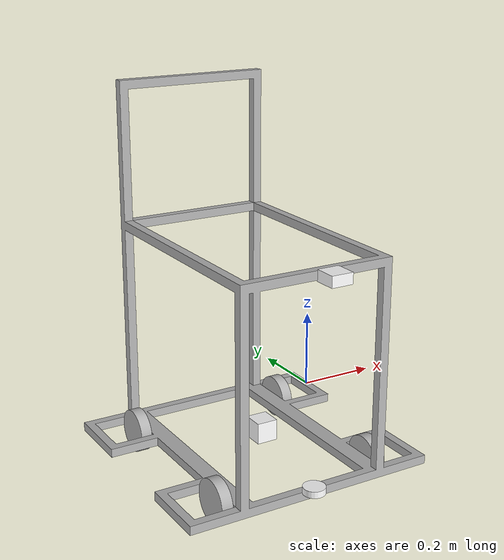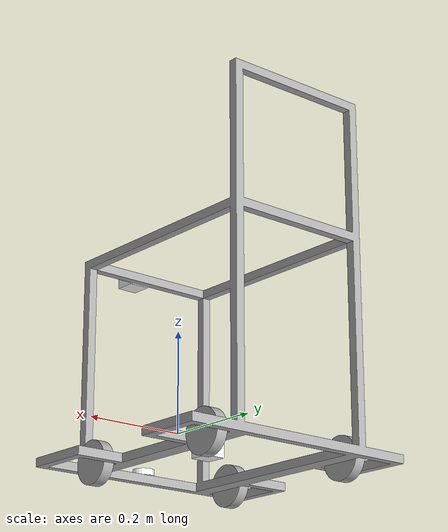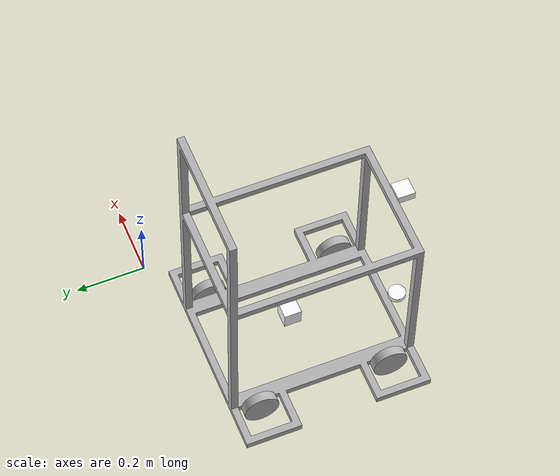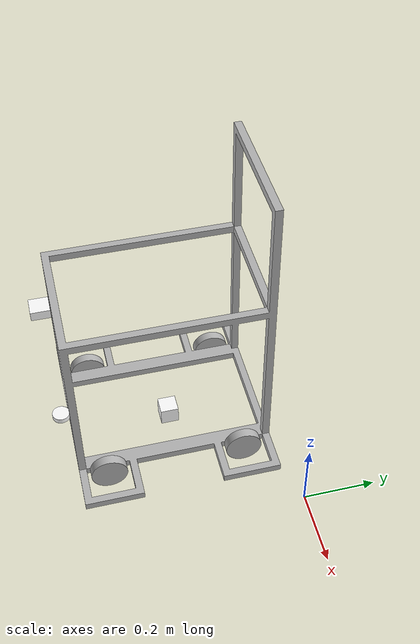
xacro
<?xml version="1.0" ?>
<robot name="urdf_base" xmlns:xacro="http://www.ros.org/wiki/xacro">

<xacro:include filename="$(find urdf_base_description)/urdf/materials.xacro" />
<xacro:include filename="$(find urdf_base_description)/urdf/urdf_base.trans" />
<xacro:include filename="$(find urdf_base_description)/urdf/urdf_base.gazebo" />
<link name="base_footprint">

</link>
<link name="base_link">
  <inertial>
    <origin xyz="-0.3694098126634616 -0.30118096192413374 0.19692457662762536" rpy="0 0 0"/>
    <mass value="19.185824620104434"/>
    <inertia ixx="1.844906" iyy="1.663084" izz="1.439572" ixy="0.0" iyz="-0.192956" ixz="0.0"/>
  </inertial>
  <visual>
    <origin xyz="0 0 0" rpy="0 0 0"/>
    <geometry>
      <mesh filename="file://$(find urdf_base_description)/meshes/base_link.stl" scale="0.001 0.001 0.001"/>
    </geometry>
    <material name="silver"/>
  </visual>
  <collision>
    <origin xyz="0 0 0" rpy="0 0 0"/>
    <geometry>
      <mesh filename="file://$(find urdf_base_description)/meshes/base_link.stl" scale="0.001 0.001 0.001"/>
    </geometry>
  </collision>
</link>

<joint name="footprint_link_joint" type="fixed">
  <origin xyz="0 0 0" rpy="0 0 0"/>
  <parent link="base_footprint"/>
  <child link="base_link"/>
  <axis xyz="0 0 0"/>
</joint>

<link name="wheel_1_1">
  <inertial>
    <origin xyz="0.013000187336528163 3.3163871071550943e-07 4.379836845702645e-07" rpy="0 0 0"/>
    <mass value="1.6029976514941926"/>
    <inertia ixx="0.002004" iyy="0.001092" izz="0.001092" ixy="0.0" iyz="-0.0" ixz="0.0"/>
  </inertial>
  <visual>
    <origin xyz="0.18941 0.509146 -0.056794" rpy="0 0 0"/>
    <geometry>
      <mesh filename="file://$(find urdf_base_description)/meshes/wheel_1_1.stl" scale="0.001 0.001 0.001"/>
    </geometry>
    <material name="silver"/>
  </visual>
  <collision>
    <origin xyz="0.18941 0.509146 -0.056794" rpy="0 0 0"/>
    <geometry>
      <mesh filename="file://$(find urdf_base_description)/meshes/wheel_1_1.stl" scale="0.001 0.001 0.001"/>
    </geometry>
  </collision>
</link>

<link name="wheel_2_1">
  <inertial>
    <origin xyz="0.013000187336532881 3.3163871146491e-07 4.379836929663261e-07" rpy="0 0 0"/>
    <mass value="1.6029976514941917"/>
    <inertia ixx="0.002004" iyy="0.001092" izz="0.001092" ixy="-0.0" iyz="-0.0" ixz="-0.0"/>
  </inertial>
  <visual>
    <origin xyz="0.18941 0.129146 -0.056794" rpy="0 0 0"/>
    <geometry>
      <mesh filename="file://$(find urdf_base_description)/meshes/wheel_2_1.stl" scale="0.001 0.001 0.001"/>
    </geometry>
    <material name="silver"/>
  </visual>
  <collision>
    <origin xyz="0.18941 0.129146 -0.056794" rpy="0 0 0"/>
    <geometry>
      <mesh filename="file://$(find urdf_base_description)/meshes/wheel_2_1.stl" scale="0.001 0.001 0.001"/>
    </geometry>
  </collision>
</link>

<link name="wheel_4_1">
  <inertial>
    <origin xyz="-0.012999812663476495 3.316387161000911e-07 4.379836937781767e-07" rpy="0 0 0"/>
    <mass value="1.6029976514941915"/>
    <inertia ixx="0.002004" iyy="0.001092" izz="0.001092" ixy="0.0" iyz="-0.0" ixz="0.0"/>
  </inertial>
  <visual>
    <origin xyz="0.54941 0.129146 -0.056794" rpy="0 0 0"/>
    <geometry>
      <mesh filename="file://$(find urdf_base_description)/meshes/wheel_4_1.stl" scale="0.001 0.001 0.001"/>
    </geometry>
    <material name="silver"/>
  </visual>
  <collision>
    <origin xyz="0.54941 0.129146 -0.056794" rpy="0 0 0"/>
    <geometry>
      <mesh filename="file://$(find urdf_base_description)/meshes/wheel_4_1.stl" scale="0.001 0.001 0.001"/>
    </geometry>
  </collision>
</link>

<link name="wheel_3_1">
  <inertial>
    <origin xyz="-0.012999812663473054 3.316387148233346e-07 4.379836854931374e-07" rpy="0 0 0"/>
    <mass value="1.6029976514941926"/>
    <inertia ixx="0.002004" iyy="0.001092" izz="0.001092" ixy="0.0" iyz="0.0" ixz="0.0"/>
  </inertial>
  <visual>
    <origin xyz="0.54941 0.509146 -0.056794" rpy="0 0 0"/>
    <geometry>
      <mesh filename="file://$(find urdf_base_description)/meshes/wheel_3_1.stl" scale="0.001 0.001 0.001"/>
    </geometry>
    <material name="silver"/>
  </visual>
  <collision>
    <origin xyz="0.54941 0.509146 -0.056794" rpy="0 0 0"/>
    <geometry>
      <mesh filename="file://$(find urdf_base_description)/meshes/wheel_3_1.stl" scale="0.001 0.001 0.001"/>
    </geometry>
  </collision>
</link>

<link name="camera">
    <inertial>
            <mass value="0.1" />
            <inertia ixx="0.01" ixy="0.0" ixz="0"
            iyy="0.01" iyz="0" izz="0.01" />
    </inertial>

    <visual>
      <geometry>
        <box size="0.05 0.05 0.025"/>
      </geometry>
      <material name="white">
        <color rgba="1 1 1 1"/>
      </material>
    </visual>

    <collision>
      <geometry>
          <box size="0.05 0.05 0.025"/>
      </geometry>
    </collision>
</link>

<link name="lidar">
    <inertial>
            <mass value="0.5" />
            <inertia ixx="0.01" ixy="0.0" ixz="0"
            iyy="0.01" iyz="0" izz="0.01" />
    </inertial>

    <visual>
      <geometry>
        <cylinder radius="0.025" length="0.015"/>
      </geometry>
      <material name="white">
        <color rgba="1 1 1 1"/>
      </material>
    </visual>

    <collision>
      <geometry>
          <box size="0.1 0.1 0.1"/>
      </geometry>
    </collision>
</link>

<link name="imu_link">
    <inertial>
      <mass value="0.3"/>
      <inertia ixx="0.01" ixy="0.0" ixz="0"
          iyy="0.01" iyz="0" izz="0.01" />
    </inertial>
    <visual>
      <geometry>
        <box size="0.05 0.05 0.05"/>
      </geometry>
      <material name="white">
        <color rgba="1 1 1 1"/>
      </material>
    </visual>
    <collision>
      <geometry>
          <box size="0.01 0.01 0.005"/>
      </geometry>
    </collision>

</link>

<joint name="Revolute 13" type="continuous">
  <origin xyz="-0.18941 -0.509146 0.056794" rpy="0 0 0"/>
  <parent link="base_link"/>
  <child link="wheel_1_1"/>
  <axis xyz="1.0 -0.0 0.0"/>
</joint>

<joint name="Revolute 14" type="continuous">
  <origin xyz="-0.18941 -0.129146 0.056794" rpy="0 0 0"/>
  <parent link="base_link"/>
  <child link="wheel_2_1"/>
  <axis xyz="1.0 -0.0 0.0"/>
</joint>

<joint name="Revolute 15" type="continuous">
  <origin xyz="-0.54941 -0.129146 0.056794" rpy="0 0 0"/>
  <parent link="base_link"/>
  <child link="wheel_4_1"/>
  <axis xyz="1.0 -0.0 0.0"/>
</joint>

<joint name="Revolute 16" type="continuous">
  <origin xyz="-0.54941 -0.509146 0.056794" rpy="0 0 0"/>
  <parent link="base_link"/>
  <child link="wheel_3_1"/>
  <axis xyz="1.0 0.0 -0.0"/>
</joint>

<joint name="camera_joint" type="fixed">
    <origin xyz="-0.35 -0.616 0.54" rpy="0 0.0 4.71"/>
    <parent link="base_link"/>
    <child link="camera"/>
    <axis xyz="0.0 0.0 1.0"/>
</joint>

<joint name="lidar_joint" type="fixed">
  <origin xyz="-0.385 -0.61 0.080" rpy="0 0.0 3.14"/>
  <parent link="base_link"/>
  <child link="lidar"/>
  <axis xyz="0.0 0.0 1.0"/>
</joint>

<joint name="imu_joint" type="fixed">
  <origin xyz="-0.33 -0.31 0.08"/>
  <parent link="base_link"/>
  <child link="imu_link"/>
  <axis xyz="0.0 0.0 1.0"/>

</joint>

<gazebo reference="lidar">
    <material>Gazebo/Blue</material>
</gazebo>

<gazebo reference="camera">
    <material>Gazebo/Red</material>
</gazebo>

<gazebo reference="camera">
  <sensor type="camera" name="camera1">
    <visualize>true</visualize>
    <update_rate>30.0</update_rate>
    <camera name="head">
      <horizontal_fov>1.3962634</horizontal_fov>
      <image>
        <width>800</width>
        <height>800</height>
        <format>R8G8B8</format>
      </image>
      <clip>
        <near>0.02</near>
        <far>300</far>
      </clip>
    </camera>
    <plugin name="camera_controller" filename="libgazebo_ros_camera.so">
      <alwaysOn>true</alwaysOn>
      <updateRate>60.0</updateRate>
      <cameraName>/camera1</cameraName>
      <imageTopicName>image_raw</imageTopicName>
      <cameraInfoTopicName>info_camera</cameraInfoTopicName>
      <frameName>camera</frameName>
      <hackBaseline>0.07</hackBaseline>
    </plugin>
  </sensor>
</gazebo>

<gazebo reference="lidar">
  <sensor name="lidar" type="gpu_ray">
    <visualize>true</visualize>
    <update_rate>2.0</update_rate>
    <plugin filename="libgazebo_ros_ray_sensor.so" name="scan">
      <output_type>sensor_msgs/PointCloud2</output_type>
      <frame_name>lidar</frame_name>
    </plugin>
    <ray>
      <scan>
        <horizontal>
          <samples>150</samples>
          <resolution>1</resolution>
          <min_angle>-3.14</min_angle>
          <max_angle>3.14</max_angle>
        </horizontal>
        <vertical>
          <samples>15</samples>
          <resolution>1</resolution>
          <min_angle>-3.14</min_angle>
          <max_angle>3.14</max_angle>
        </vertical>
      </scan>
      <range>
        <min>0.5</min>
        <max>15.0</max>
        <resolution>0.015</resolution>
      </range>
      <noise>
        <type>gaussian</type>
        <mean>0.0</mean>
        <stddev>0.01</stddev>
      </noise>
    </ray>
  </sensor>

</gazebo>
<gazebo>
    <plugin name="wheel_drive_controller" filename="libgazebo_ros_diff_drive.so">
        <!-- wheels -->
        <num_wheel_pairs>2</num_wheel_pairs>
        <left_joint>Revolute 13</left_joint>
        <left_joint>Revolute 14</left_joint>
        <right_joint>Revolute 16</right_joint>
        <right_joint>Revolute 15</right_joint>

        <!-- kinematics -->
        <wheel_separation>0.4</wheel_separation>
        <wheel_diameter>0.1</wheel_diameter>

        <!-- Limits -->
        <max_wheel_torque>200.0</max_wheel_torque>
        <max_wheel_acceleration>10.0</max_wheel_acceleration>

        <!-- Output -->
        <odometry_frame>odom</odometry_frame>
        <robot_base_frame>base_footprint</robot_base_frame>

        <!-- topic & re remappings -->

        <publish_odom>true</publish_odom>
        <publish_odom_tf>true</publish_odom_tf>
        <update_rate>30.0</update_rate>

        <odometry_source>0</odometry_source>

    <!-- Change the ROS topic we will publish the odometry data to -->
        <ros>
          <remapping>odom:=wheel/odometry</remapping>
        </ros>
    </plugin>
</gazebo>
<gazebo>
  <plugin name="basic_mobile_bot_joint_state" filename="libgazebo_ros_joint_state_publisher.so">
    <ros>
      <remapping>~/out:=joint_states</remapping>
    </ros>
    <update_rate>30</update_rate>
    <joint_name>Revolute 13</joint_name>
    <joint_name>Revolute 14</joint_name>
    <joint_name>Revolute 15</joint_name>
    <joint_name>Revolute 16</joint_name>
  </plugin>

</gazebo>

<gazebo reference="imu_link">
  <gravity>true</gravity>
  <sensor name="imu_sensor" type="imu">
    <always_on>true</always_on>
    <update_rate>100</update_rate>
    <visualize>true</visualize>
    <topic>imu</topic>
    <plugin filename="libgazebo_ros_imu_sensor.so" name="imu_plugin">
      <topicName>imu</topicName>
      <bodyName>imu_link</bodyName>
      <updateRateHZ>10.0</updateRateHZ>
      <gaussianNoise>0.0</gaussianNoise>
      <xyzOffset>0 0 0</xyzOffset>
      <rpyOffset>0 0 0</rpyOffset>
      <frameName>imu_link</frameName>
      <ros>
        <namespace>/imu</namespace>
        <remapping>~/out:=data</remapping>
      </ros>
      <initial_orientation_as_reference>false</initial_orientation_as_reference>
    </plugin>
    <pose>0 0 0 0 0 0</pose>
  </sensor>
</gazebo>

</robot>

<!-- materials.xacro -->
<robot name="urdf_base" xmlns:xacro="http://www.ros.org/wiki/xacro" >

<material name="silver">
  <color rgba="0.700 0.700 0.700 1.000"/>
</material>

</robot>

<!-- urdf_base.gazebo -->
<robot name="urdf_base" xmlns:xacro="http://www.ros.org/wiki/xacro" >

<xacro:property name="body_color" value="Gazebo/Silver" />

<gazebo reference="base_link">
  <material>${body_color}</material>
  <mu1>0.2</mu1>
  <mu2>0.2</mu2>
  <self_collide>true</self_collide>
  <gravity>true</gravity>
</gazebo>

<gazebo reference="wheel_1_1">
  <material>${body_color}</material>
  <mu1>0.2</mu1>
  <mu2>0.2</mu2>
  <self_collide>true</self_collide>
</gazebo>

<gazebo reference="wheel_2_1">
  <material>${body_color}</material>
  <mu1>0.2</mu1>
  <mu2>0.2</mu2>
  <self_collide>true</self_collide>
</gazebo>

<gazebo reference="wheel_4_1">
  <material>${body_color}</material>
  <mu1>0.2</mu1>
  <mu2>0.2</mu2>
  <self_collide>true</self_collide>
</gazebo>

<gazebo reference="wheel_3_1">
  <material>${body_color}</material>
  <mu1>0.2</mu1>
  <mu2>0.2</mu2>
  <self_collide>true</self_collide>
</gazebo>

</robot>
